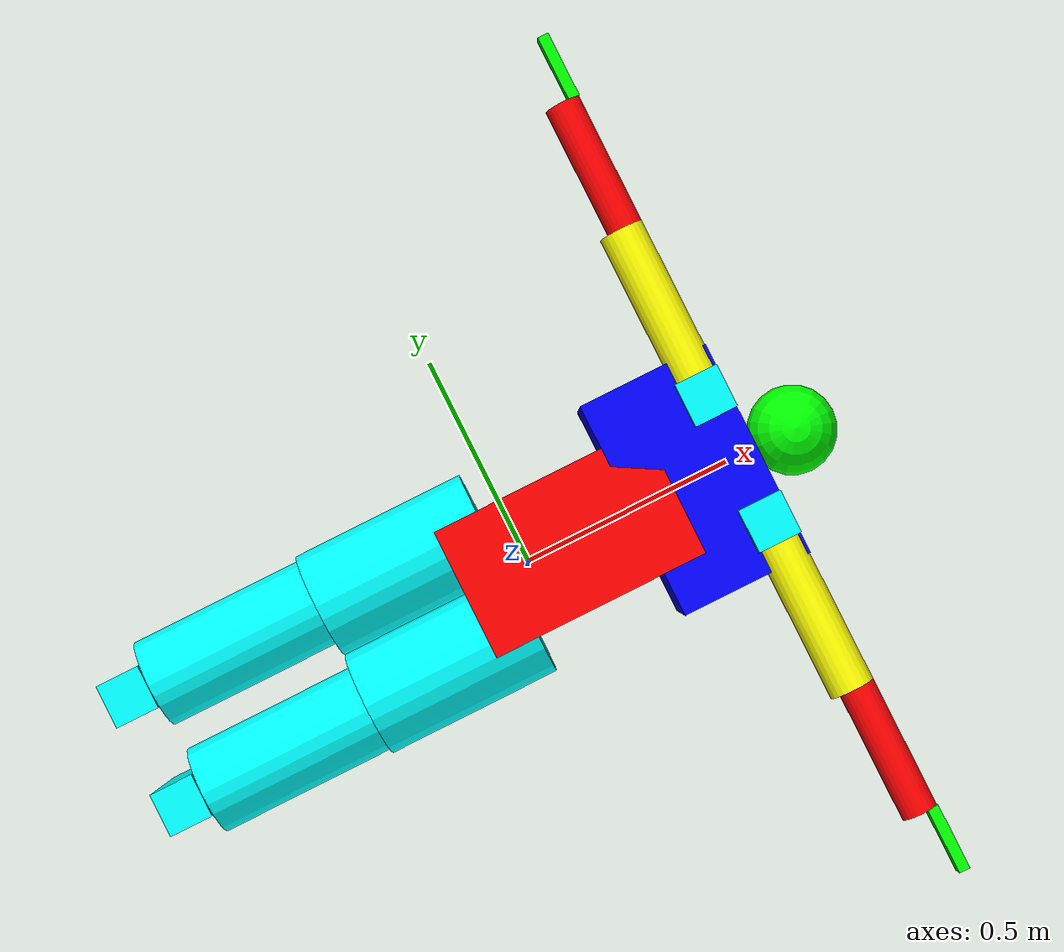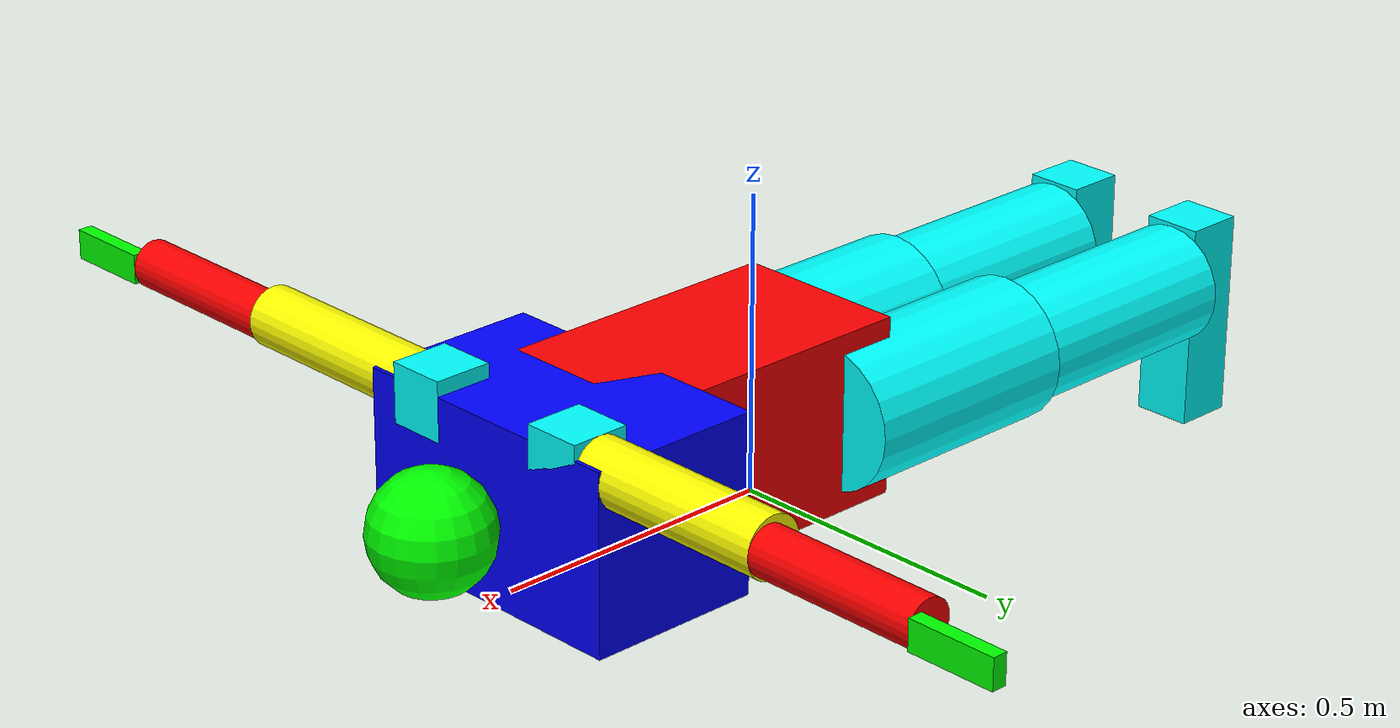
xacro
<?xml version="1.0"?>
<robot xmlns:xacro="http://www.ros.org/wiki/xacro" name="diver">
	<link name="local" />

	<xacro:macro name="Joint3d"
		params="node parent *origin *geometry *color *origin_joint">
		<link name="${node}_2" />
		<link name="${node}_1" />
		<link name="${node}">
			<visual>
				<xacro:insert_block name="origin" />
				<geometry>
					<xacro:insert_block name="geometry" />
				</geometry>
				<material name="${node}_color">
					<xacro:insert_block name="color" />
				</material>
			</visual>
		</link>

		<joint name="${node}_z" type="continuous">
			<xacro:insert_block name="origin_joint" />
			<axis xyz="1 0 0" />
			<parent link="${parent}" />
			<child link="${node}_2" />
		</joint>

		<joint name="${node}_y" type="continuous">
			<axis xyz="0 1 0" />
			<parent link="${node}_2" />
			<child link="${node}_1" />
		</joint>

		<joint name="${node}_x" type="continuous">
			<axis xyz="0 0 1" />
			<parent link="${node}_1" />
			<child link="${node}" />
		</joint>
	</xacro:macro>

	<xacro:Joint3d node="lower_back" parent="local">
		<origin xyz="0.1 0 -0.15" rpy="0 0 0" />
		<box size="0.5 0.3 0.3"/>
		<color rgba="1 0 0 1" />
		<origin xyz="0 0 0.3" rpy="0 0 0" />
	</xacro:Joint3d>

	<xacro:Joint3d node="upper_body" parent="lower_back">
		<origin xyz="0.15 0 -0.15" rpy="0 1.5708 0" />
		<box size="0.3 0.5 0.3"/>
		<color rgba="0 0 1 1" />
		<origin xyz="0.25 0 -0.3" rpy="3.1416 0 0" />
	</xacro:Joint3d>

	<xacro:Joint3d node="head" parent="upper_body">
		<origin xyz="0 0 -0.1" rpy="0 1.5708 0" />
		<sphere radius="0.1" />
		<color rgba="0 1 0 1" />
		<origin xyz="0.5 0 -0.15" rpy="3.1416 -1.5708 0" />
	</xacro:Joint3d>

	<xacro:Joint3d node="left_thigh" parent="lower_back">
		<origin xyz="0 0 -0.13" rpy="0 1.5708 0"/>
		<cylinder radius="0.12" length="0.4" />
		<color rgba="0 1 1 1" />
		<origin xyz="-0.25 0.25 -0.15" rpy="-1.5708 3.1416 0" />
	</xacro:Joint3d>

	<xacro:Joint3d node="right_thigh" parent="lower_back">
		<origin xyz="0 0 -0.13" rpy="0 1.5708 0"/>
		<cylinder radius="0.12" length="0.4" />
		<color rgba="0 1 1 1" />
		<origin xyz="-0.25 -0.25 -0.15" rpy="1.5708 3.1416 0" />
	</xacro:Joint3d>

	<xacro:Joint3d node="right_calf" parent="right_thigh">
		<origin xyz="0 0 -0.1" rpy="0 1.5708 0"/>
		<cylinder radius="0.1" length="0.4" />
		<color rgba="0 1 1 1" />
		<origin xyz="0.4 0.1 -0.12" rpy="-1.5708 0 0" />
	</xacro:Joint3d>

	<xacro:Joint3d node="left_calf" parent="left_thigh">
		<origin xyz="0 0 -0.1" rpy="0 1.5708 0"/>
		<cylinder radius="0.1" length="0.4" />
		<color rgba="0 1 1 1" />
		<origin xyz="0.4 -0.1 -0.12" rpy="1.5708 0 0" />
	</xacro:Joint3d>

	<xacro:Joint3d node="right_foot" parent="right_calf">
		<origin xyz="-0.13 0 -0.05" rpy="0 1.5708 0"/>
		<box size="0.1 0.1 0.35" />
		<color rgba="0 1 1 1" />
		<origin xyz="0.2 0 0.1" rpy="0 -1.5708 0" />
	</xacro:Joint3d>

	<xacro:Joint3d node="left_foot" parent="left_calf">
		<origin xyz="-0.13 0 -0.05" rpy="0 1.5708 0"/>
		<box size="0.1 0.1 0.35" />
		<color rgba="0 1 1 1" />
		<origin xyz="0.2 0 0.1" rpy="0 -1.5708 0" />
	</xacro:Joint3d>

	<xacro:Joint3d node="left_shoulder" parent="upper_body">
		<origin xyz="0 0 -0.05" rpy="0 1.5708 0"/>
		<box size="0.1 0.1 0.1" />
		<color rgba="0 1 1 1" />
		<origin xyz="0.25 -0.15 -0.325" rpy="3.1416 0 -1.5708" />
	</xacro:Joint3d>

		<xacro:Joint3d node="right_shoulder" parent="upper_body">
		<origin xyz="0 0 -0.05" rpy="0 1.5708 0"/>
		<box size="0.1 0.1 0.1" />
		<color rgba="0 1 1 1" />
		<origin xyz="0.25 0.15 -0.325" rpy="3.1416 0 1.5708" />
	</xacro:Joint3d>

	<xacro:Joint3d node="left_upper_arm" parent="left_shoulder">
		<origin xyz="0 0 -0.05" rpy="0 1.5708 0"/>
		<cylinder radius="0.05" length="0.4" />
		<color rgba="1 1 0 1" />
		<origin xyz="0.2 -0.05 -0.05" rpy="1.5708 0 0" />
	</xacro:Joint3d>

	<xacro:Joint3d node="right_upper_arm" parent="right_shoulder">
		<origin xyz="0 0 -0.05" rpy="0 1.5708 0"/>
		<cylinder radius="0.05" length="0.4" />
		<color rgba="1 1 0 1" />
		<origin xyz="0.2 0.05 -0.05" rpy="-1.5708 0 0" />
	</xacro:Joint3d>

	<xacro:Joint3d node="left_forearm" parent="left_upper_arm">
		<origin xyz="0 0 -0.04" rpy="0 1.5708 0"/>
		<cylinder radius="0.04" length="0.3" />
		<color rgba="1 0 0 1" />
		<origin xyz="0.35 0 0" rpy="0 0 0" />
	</xacro:Joint3d>

	<xacro:Joint3d node="right_forearm" parent="right_upper_arm">
		<origin xyz="0 0 -0.04" rpy="0 1.5708 0"/>
		<cylinder radius="0.04" length="0.3" />
		<color rgba="1 0 0 1" />
		<origin xyz="0.35 0 0" rpy="0 0 0" />
	</xacro:Joint3d>

	<xacro:Joint3d node="left_hand" parent="left_forearm">
		<origin xyz="0 0 -0.0125" rpy="0 1.5708 0"/>
		<box size="0.025 0.05 0.15" />
		<color rgba="0 1 0 1" />
		<origin xyz="0.225 0 0" rpy="0 0 0" />
	</xacro:Joint3d>

	<xacro:Joint3d node="right_hand" parent="right_forearm">
		<origin xyz="0 0 -0.0125" rpy="0 1.5708 0"/>
		<box size="0.025 0.05 0.15" />
		<color rgba="0 1 0 1" />
		<origin xyz="0.225 0 0" rpy="0 0 0" />
	</xacro:Joint3d>
</robot>
